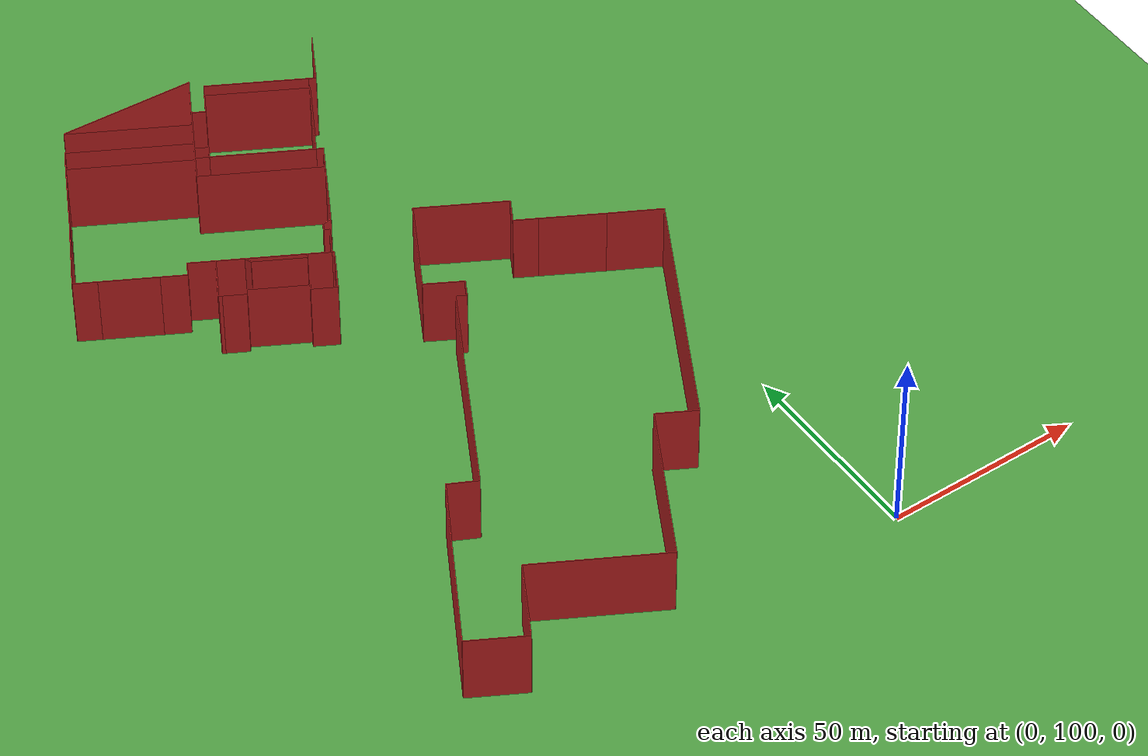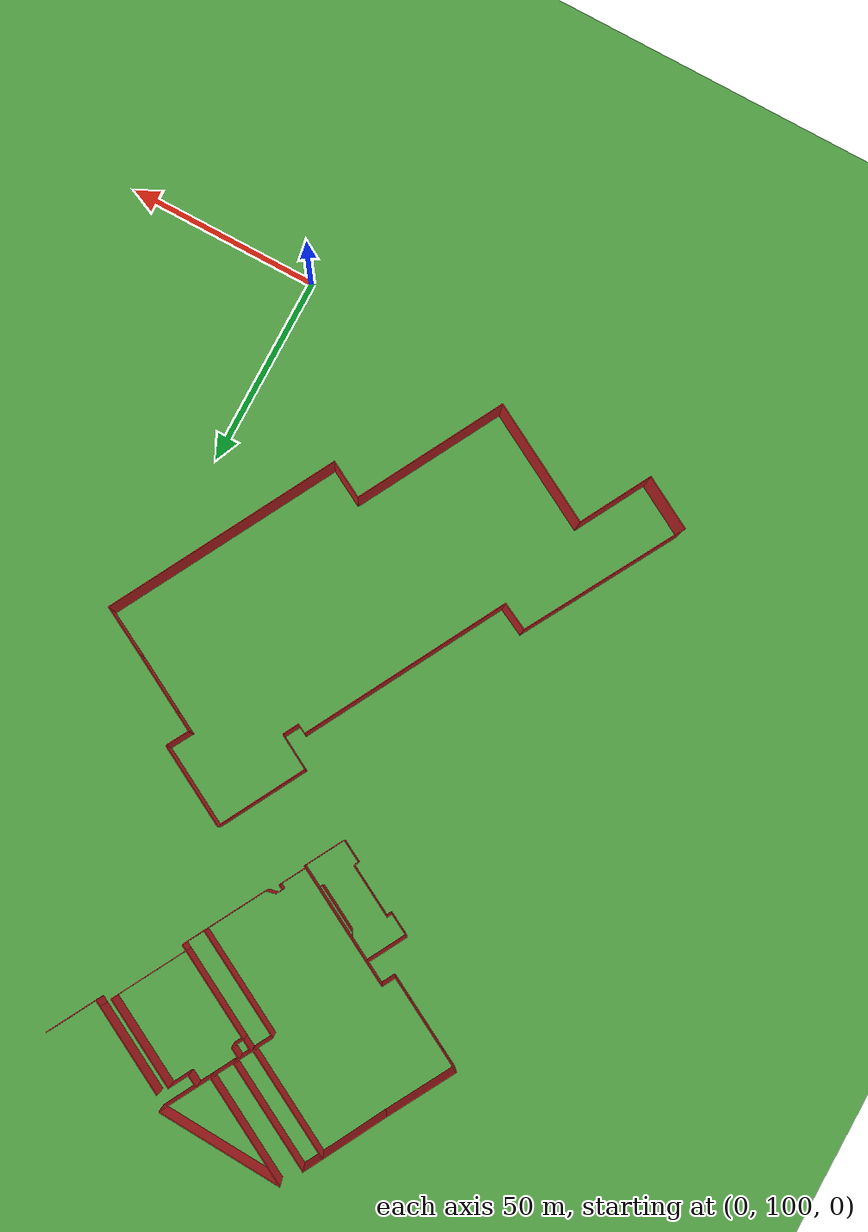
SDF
<sdf version="1.4">
 <world name="default">
  <model name="ground">
   <static>true</static>
   <link name="link">
    <collision name="collision">
     <geometry><plane><size>10000 10000</size><normal>0 0 1</normal></plane></geometry>
     <surface><friction><ode><mu>100</mu><mu2>50</mu2></ode></friction></surface>
    </collision>
    <visual name="visual">
     <pose>0 0 -1 0 0 0</pose>
     <geometry><plane><normal>0 0 1</normal><size>10000 10000</size></plane></geometry>
     <material>
      <script><uri>file://media/materials/scripts/gazebo.material</uri><name>Gazebo/Grass</name></script>
     </material>
    </visual>
   </link>
  </model>
  <include><uri>model://sun</uri></include>
  <model name="office_building_266170570">
   <static>true</static>
   <pose>-81.7936501681 229.378567488 0.0 0 0 0</pose>
   <link name="office_building_266170570_0">
    <collision name="office_building_266170570_0">
     <geometry><box><size>1.39700310273 0.2 20.0</size></box></geometry>
    </collision>
    <visual name="office_building_266170570_0">
     <geometry><box><size>1.39700310273 0.2 20.0</size></box></geometry>
     <material>
      <script><uri>file://media/materials/scripts/gazebo.material</uri><name>Gazebo/Red</name></script>
     </material>
    </visual>
    <pose>3.63251054344 -7.369670324 9.0 0 0 -2.0777974315</pose>
   </link>
   <link name="office_building_266170570_1">
    <collision name="office_building_266170570_1">
     <geometry><box><size>14.6986015448 0.2 20.0</size></box></geometry>
    </collision>
    <visual name="office_building_266170570_1">
     <geometry><box><size>14.6986015448 0.2 20.0</size></box></geometry>
     <material>
      <script><uri>file://media/materials/scripts/gazebo.material</uri><name>Gazebo/Red</name></script>
     </material>
    </visual>
    <pose>-2.4608443352 -3.20447137608 9.0 0 0 -0.504831986802</pose>
   </link>
   <link name="office_building_266170570_2">
    <collision name="office_building_266170570_2">
     <geometry><box><size>1.39700496269 0.2 20.0</size></box></geometry>
    </collision>
    <visual name="office_building_266170570_2">
     <geometry><box><size>1.39700496269 0.2 20.0</size></box></geometry>
     <material>
      <script><uri>file://media/materials/scripts/gazebo.material</uri><name>Gazebo/Red</name></script>
     </material>
    </visual>
    <pose>-9.23252553549 -0.260539667054 9.0 0 0 1.06379499911</pose>
   </link>
   <link name="office_building_266170570_3">
    <collision name="office_building_266170570_3">
     <geometry><box><size>5.76691093643 0.2 20.0</size></box></geometry>
    </collision>
    <visual name="office_building_266170570_3">
     <geometry><box><size>5.76691093643 0.2 20.0</size></box></geometry>
     <material>
      <script><uri>file://media/materials/scripts/gazebo.material</uri><name>Gazebo/Red</name></script>
     </material>
    </visual>
    <pose>-12.0957704683 0.522859389206 9.0 0 0 -0.504602122453</pose>
   </link>
   <link name="office_building_266170570_4">
    <collision name="office_building_266170570_4">
     <geometry><box><size>0.833846281988 0.2 20.0</size></box></geometry>
    </collision>
    <visual name="office_building_266170570_4">
     <geometry><box><size>0.833846281988 0.2 20.0</size></box></geometry>
     <material>
      <script><uri>file://media/materials/scripts/gazebo.material</uri><name>Gazebo/Red</name></script>
     </material>
    </visual>
    <pose>-14.9867890051 2.11483712402 9.0 0 0 -0.494708380203</pose>
   </link>
   <link name="office_building_266170570_5">
    <collision name="office_building_266170570_5">
     <geometry><box><size>11.4798929071 0.2 20.0</size></box></geometry>
    </collision>
    <visual name="office_building_266170570_5">
     <geometry><box><size>11.4798929071 0.2 20.0</size></box></geometry>
     <material>
      <script><uri>file://media/materials/scripts/gazebo.material</uri><name>Gazebo/Red</name></script>
     </material>
    </visual>
    <pose>-12.5625727852 7.32840228102 9.0 0 0 -2.07861022507</pose>
   </link>
   <link name="office_building_266170570_6">
    <collision name="office_building_266170570_6">
     <geometry><box><size>6.80532004535 0.2 20.0</size></box></geometry>
    </collision>
    <visual name="office_building_266170570_6">
     <geometry><box><size>6.80532004535 0.2 20.0</size></box></geometry>
     <material>
      <script><uri>file://media/materials/scripts/gazebo.material</uri><name>Gazebo/Red</name></script>
     </material>
    </visual>
    <pose>-6.79144881949 10.7015033614 9.0 0 0 2.63783901698</pose>
   </link>
   <link name="office_building_266170570_7">
    <collision name="office_building_266170570_7">
     <geometry><box><size>1.78837437508 0.2 20.0</size></box></geometry>
    </collision>
    <visual name="office_building_266170570_7">
     <geometry><box><size>1.78837437508 0.2 20.0</size></box></geometry>
     <material>
      <script><uri>file://media/materials/scripts/gazebo.material</uri><name>Gazebo/Red</name></script>
     </material>
    </visual>
    <pose>-3.47792002104 8.22933964613 9.0 0 0 1.95306828924</pose>
   </link>
   <link name="office_building_266170570_8">
    <collision name="office_building_266170570_8">
     <geometry><box><size>13.1072693143 0.2 20.0</size></box></geometry>
    </collision>
    <visual name="office_building_266170570_8">
     <geometry><box><size>13.1072693143 0.2 20.0</size></box></geometry>
     <material>
      <script><uri>file://media/materials/scripts/gazebo.material</uri><name>Gazebo/Red</name></script>
     </material>
    </visual>
    <pose>2.59319621351 4.23259032946 9.0 0 0 2.63721885062</pose>
   </link>
   <link name="office_building_266170570_9">
    <collision name="office_building_266170570_9">
     <geometry><box><size>1.12604697688 0.2 20.0</size></box></geometry>
    </collision>
    <visual name="office_building_266170570_9">
     <geometry><box><size>1.12604697688 0.2 20.0</size></box></geometry>
     <material>
      <script><uri>file://media/materials/scripts/gazebo.material</uri><name>Gazebo/Red</name></script>
     </material>
    </visual>
    <pose>8.60319730164 1.55820258264 9.0 0 0 -2.07589376781</pose>
   </link>
   <link name="office_building_266170570_10">
    <collision name="office_building_266170570_10">
     <geometry><box><size>5.85540222931 0.2 20.0</size></box></geometry>
    </collision>
    <visual name="office_building_266170570_10">
     <geometry><box><size>5.85540222931 0.2 20.0</size></box></geometry>
     <material>
      <script><uri>file://media/materials/scripts/gazebo.material</uri><name>Gazebo/Red</name></script>
     </material>
    </visual>
    <pose>11.4386392922 0.635833320226 9.0 0 0 2.63712221976</pose>
   </link>
   <link name="office_building_266170570_11">
    <collision name="office_building_266170570_11">
     <geometry><box><size>0.558584636573 0.2 20.0</size></box></geometry>
    </collision>
    <visual name="office_building_266170570_11">
     <geometry><box><size>0.558584636573 0.2 20.0</size></box></geometry>
     <material>
      <script><uri>file://media/materials/scripts/gazebo.material</uri><name>Gazebo/Red</name></script>
     </material>
    </visual>
    <pose>14.2462629911 -0.91402323997 9.0 0 0 2.63803889244</pose>
   </link>
   <link name="office_building_266170570_12">
    <collision name="office_building_266170570_12">
     <geometry><box><size>11.4798641348 0.2 20.0</size></box></geometry>
    </collision>
    <visual name="office_building_266170570_12">
     <geometry><box><size>11.4798641348 0.2 20.0</size></box></geometry>
     <material>
      <script><uri>file://media/materials/scripts/gazebo.material</uri><name>Gazebo/Red</name></script>
     </material>
    </visual>
    <pose>11.6997434728 -6.06440235666 9.0 0 0 1.06298284551</pose>
   </link>
   <link name="office_building_266170570_13">
    <collision name="office_building_266170570_13">
     <geometry><box><size>6.41398778348 0.2 20.0</size></box></geometry>
    </collision>
    <visual name="office_building_266170570_13">
     <geometry><box><size>6.41398778348 0.2 20.0</size></box></geometry>
     <material>
      <script><uri>file://media/materials/scripts/gazebo.material</uri><name>Gazebo/Red</name></script>
     </material>
    </visual>
    <pose>6.1009734788 -9.53015749556 9.0 0 0 -0.504389564677</pose>
   </link>
  </model>
  <model name="Dervish">
   <static>true</static>
   <pose>-66.2884371687 264.681931728 0.0 0 0 0</pose>
   <link name="Dervish_0">
    <collision name="Dervish_0"><geometry><box><size>5.67785405827 0.2 20.0</size></box></geometry></collision>
    <visual name="Dervish_0">
     <geometry><box><size>5.67785405827 0.2 20.0</size></box></geometry>
     <material>
      <script><uri>file://media/materials/scripts/gazebo.material</uri><name>Gazebo/Red</name></script>
     </material>
    </visual>
    <pose>-12.4715369249 5.87945724169 9.0 0 0 -2.07573767451</pose>
   </link>
   <link name="Dervish_1">
    <collision name="Dervish_1"><geometry><box><size>0.541932113997 0.2 20.0</size></box></geometry></collision>
    <visual name="Dervish_1">
     <geometry><box><size>0.541932113997 0.2 20.0</size></box></geometry>
     <material>
      <script><uri>file://media/materials/scripts/gazebo.material</uri><name>Gazebo/Red</name></script>
     </material>
    </visual>
    <pose>-10.9647460019 8.59992401091 9.0 0 0 -2.08572171621</pose>
   </link>
   <link name="Dervish_2">
    <collision name="Dervish_2"><geometry><box><size>3.42054090774 0.2 20.0</size></box></geometry></collision>
    <visual name="Dervish_2">
     <geometry><box><size>3.42054090774 0.2 20.0</size></box></geometry>
     <material>
      <script><uri>file://media/materials/scripts/gazebo.material</uri><name>Gazebo/Red</name></script>
     </material>
    </visual>
    <pose>-9.33576221419 8.00606605872 9.0 0 0 2.63509139647</pose>
   </link>
   <link name="Dervish_3">
    <collision name="Dervish_3"><geometry><box><size>25.3847935368 0.2 20.0</size></box></geometry></collision>
    <visual name="Dervish_3">
     <geometry><box><size>25.3847935368 0.2 20.0</size></box></geometry>
     <material>
      <script><uri>file://media/materials/scripts/gazebo.material</uri><name>Gazebo/Red</name></script>
     </material>
    </visual>
    <pose>3.26793138139 1.03586656572 9.0 0 0 2.63660743519</pose>
   </link>
   <link name="Dervish_4">
    <collision name="Dervish_4"><geometry><box><size>1.71717407061 0.2 20.0</size></box></geometry></collision>
    <visual name="Dervish_4">
     <geometry><box><size>1.71717407061 0.2 20.0</size></box></geometry>
     <material>
      <script><uri>file://media/materials/scripts/gazebo.material</uri><name>Gazebo/Red</name></script>
     </material>
    </visual>
    <pose>15.1266349575 -5.52159209482 9.0 0 0 2.63452061059</pose>
   </link>
   <link name="Dervish_5">
    <collision name="Dervish_5"><geometry><box><size>3.2097948226 0.2 20.0</size></box></geometry></collision>
    <visual name="Dervish_5">
     <geometry><box><size>3.2097948226 0.2 20.0</size></box></geometry>
     <material>
      <script><uri>file://media/materials/scripts/gazebo.material</uri><name>Gazebo/Red</name></script>
     </material>
    </visual>
    <pose>15.1043323852 -7.34509249293 9.0 0 0 1.06836298953</pose>
   </link>
   <link name="Dervish_6">
    <collision name="Dervish_6"><geometry><box><size>2.99721694135 0.2 20.0</size></box></geometry></collision>
    <visual name="Dervish_6">
     <geometry><box><size>2.99721694135 0.2 20.0</size></box></geometry>
     <material>
      <script><uri>file://media/materials/scripts/gazebo.material</uri><name>Gazebo/Red</name></script>
     </material>
    </visual>
    <pose>13.60310679 -10.061341314 9.0 0 0 1.06325252569</pose>
   </link>
   <link name="Dervish_7">
    <collision name="Dervish_7"><geometry><box><size>30.5281612119 0.2 20.0</size></box></geometry></collision>
    <visual name="Dervish_7">
     <geometry><box><size>30.5281612119 0.2 20.0</size></box></geometry>
     <material>
      <script><uri>file://media/materials/scripts/gazebo.material</uri><name>Gazebo/Red</name></script>
     </material>
    </visual>
    <pose>-0.485075156233 -3.98810819208 9.0 0 0 -0.504854231724</pose>
   </link>
  </model>
  <model name="restaurant_0">
   <static>true</static>
   <pose>-66.2884371687 264.681931728 0.0 0 0 0</pose>
   <link name="restaurant_0_0">
    <collision name="restaurant_0_0">
     <geometry><box><size>5.67785405827 0.2 20.0</size></box></geometry>
    </collision>
    <visual name="restaurant_0_0">
     <geometry><box><size>5.67785405827 0.2 20.0</size></box></geometry>
     <material>
      <script><uri>file://media/materials/scripts/gazebo.material</uri><name>Gazebo/Blue</name></script>
     </material>
    </visual>
    <pose>-12.4715369249 5.87945724169 9.0 0 0 -2.07573767451</pose>
   </link>
   <link name="restaurant_0_1">
    <collision name="restaurant_0_1">
     <geometry><box><size>0.541932113997 0.2 20.0</size></box></geometry>
    </collision>
    <visual name="restaurant_0_1">
     <geometry><box><size>0.541932113997 0.2 20.0</size></box></geometry>
     <material>
      <script><uri>file://media/materials/scripts/gazebo.material</uri><name>Gazebo/Blue</name></script>
     </material>
    </visual>
    <pose>-10.9647460019 8.59992401091 9.0 0 0 -2.08572171621</pose>
   </link>
   <link name="restaurant_0_2">
    <collision name="restaurant_0_2">
     <geometry><box><size>3.42054090774 0.2 20.0</size></box></geometry>
    </collision>
    <visual name="restaurant_0_2">
     <geometry><box><size>3.42054090774 0.2 20.0</size></box></geometry>
     <material>
      <script><uri>file://media/materials/scripts/gazebo.material</uri><name>Gazebo/Blue</name></script>
     </material>
    </visual>
    <pose>-9.33576221419 8.00606605872 9.0 0 0 2.63509139647</pose>
   </link>
   <link name="restaurant_0_3">
    <collision name="restaurant_0_3">
     <geometry><box><size>25.3847935368 0.2 20.0</size></box></geometry>
    </collision>
    <visual name="restaurant_0_3">
     <geometry><box><size>25.3847935368 0.2 20.0</size></box></geometry>
     <material>
      <script><uri>file://media/materials/scripts/gazebo.material</uri><name>Gazebo/Blue</name></script>
     </material>
    </visual>
    <pose>3.26793138139 1.03586656572 9.0 0 0 2.63660743519</pose>
   </link>
   <link name="restaurant_0_4">
    <collision name="restaurant_0_4">
     <geometry><box><size>1.71717407061 0.2 20.0</size></box></geometry>
    </collision>
    <visual name="restaurant_0_4">
     <geometry><box><size>1.71717407061 0.2 20.0</size></box></geometry>
     <material>
      <script><uri>file://media/materials/scripts/gazebo.material</uri><name>Gazebo/Blue</name></script>
     </material>
    </visual>
    <pose>15.1266349575 -5.52159209482 9.0 0 0 2.63452061059</pose>
   </link>
   <link name="restaurant_0_5">
    <collision name="restaurant_0_5">
     <geometry><box><size>3.2097948226 0.2 20.0</size></box></geometry>
    </collision>
    <visual name="restaurant_0_5">
     <geometry><box><size>3.2097948226 0.2 20.0</size></box></geometry>
     <material>
      <script><uri>file://media/materials/scripts/gazebo.material</uri><name>Gazebo/Blue</name></script>
     </material>
    </visual>
    <pose>15.1043323852 -7.34509249293 9.0 0 0 1.06836298953</pose>
   </link>
   <link name="restaurant_0_6">
    <collision name="restaurant_0_6">
     <geometry><box><size>2.99721694135 0.2 20.0</size></box></geometry>
    </collision>
    <visual name="restaurant_0_6">
     <geometry><box><size>2.99721694135 0.2 20.0</size></box></geometry>
     <material>
      <script><uri>file://media/materials/scripts/gazebo.material</uri><name>Gazebo/Blue</name></script>
     </material>
    </visual>
    <pose>13.60310679 -10.061341314 9.0 0 0 1.06325252569</pose>
   </link>
   <link name="restaurant_0_7">
    <collision name="restaurant_0_7">
     <geometry><box><size>30.5281612119 0.2 20.0</size></box></geometry>
    </collision>
    <visual name="restaurant_0_7">
     <geometry><box><size>30.5281612119 0.2 20.0</size></box></geometry>
     <material>
      <script><uri>file://media/materials/scripts/gazebo.material</uri><name>Gazebo/Blue</name></script>
     </material>
    </visual>
    <pose>-0.485075156233 -3.98810819208 9.0 0 0 -0.504854231724</pose>
   </link>
  </model>
  <model name="office_building_266170603">
   <static>true</static>
   <pose>-75.0597866514 289.817154833 0.0 0 0 0</pose>
   <link name="office_building_266170603_0">
    <collision name="office_building_266170603_0">
     <geometry><box><size>30.6402129822 0.2 20.0</size></box></geometry>
    </collision>
    <visual name="office_building_266170603_0">
     <geometry><box><size>30.6402129822 0.2 20.0</size></box></geometry>
     <material>
      <script><uri>file://media/materials/scripts/gazebo.material</uri><name>Gazebo/Red</name></script>
     </material>
    </visual>
    <pose>-9.87628696857 1.15682898354 9.0 0 0 -0.50472329848</pose>
   </link>
   <link name="office_building_266170603_1">
    <collision name="office_building_266170603_1">
     <geometry><box><size>34.0271769497 0.2 20.0</size></box></geometry>
    </collision>
    <visual name="office_building_266170603_1">
     <geometry><box><size>34.0271769497 0.2 20.0</size></box></geometry>
     <material>
      <script><uri>file://media/materials/scripts/gazebo.material</uri><name>Gazebo/Red</name></script>
     </material>
    </visual>
    <pose>-6.30111811998 7.57896428873 9.0 0 0 3.08359848207</pose>
   </link>
   <link name="office_building_266170603_2">
    <collision name="office_building_266170603_2">
     <geometry><box><size>10.584524215 0.2 20.0</size></box></geometry>
    </collision>
    <visual name="office_building_266170603_2">
     <geometry><box><size>10.584524215 0.2 20.0</size></box></geometry>
     <material>
      <script><uri>file://media/materials/scripts/gazebo.material</uri><name>Gazebo/Red</name></script>
     </material>
    </visual>
    <pose>8.10952218297 1.96889216168 9.0 0 0 1.06279072848</pose>
   </link>
   <link name="office_building_266170603_3">
    <collision name="office_building_266170603_3">
     <geometry><box><size>4.115904944 0.2 20.0</size></box></geometry>
    </collision>
    <visual name="office_building_266170603_3">
     <geometry><box><size>4.115904944 0.2 20.0</size></box></geometry>
     <material>
      <script><uri>file://media/materials/scripts/gazebo.material</uri><name>Gazebo/Red</name></script>
     </material>
    </visual>
    <pose>4.53435333439 -4.45324314351 9.0 0 0 1.06292294041</pose>
   </link>
  </model>
  <model name="office_building_266170601">
   <static>true</static>
   <pose>-66.8825615801 277.941499722 0.0 0 0 0</pose>
   <link name="office_building_266170601_0">
    <collision name="office_building_266170601_0">
     <geometry><box><size>3.38353530132 0.2 20.0</size></box></geometry>
    </collision>
    <visual name="office_building_266170601_0">
     <geometry><box><size>3.38353530132 0.2 20.0</size></box></geometry>
     <material>
      <script><uri>file://media/materials/scripts/gazebo.material</uri><name>Gazebo/Red</name></script>
     </material>
    </visual>
    <pose>-6.42319952826 -4.6050427798 9.0 0 0 -2.07877552723</pose>
   </link>
   <link name="office_building_266170601_1">
    <collision name="office_building_266170601_1">
     <geometry><box><size>3.4164629303 0.2 20.0</size></box></geometry>
    </collision>
    <visual name="office_building_266170601_1">
     <geometry><box><size>3.4164629303 0.2 20.0</size></box></geometry>
     <material>
      <script><uri>file://media/materials/scripts/gazebo.material</uri><name>Gazebo/Red</name></script>
     </material>
    </visual>
    <pose>-7.09584339224 -2.30141914977 9.0 0 0 -0.504345727199</pose>
   </link>
   <link name="office_building_266170601_2">
    <collision name="office_building_266170601_2">
     <geometry><box><size>1.63508040049 0.2 20.0</size></box></geometry>
    </collision>
    <visual name="office_building_266170601_2">
     <geometry><box><size>1.63508040049 0.2 20.0</size></box></geometry>
     <material>
      <script><uri>file://media/materials/scripts/gazebo.material</uri><name>Gazebo/Red</name></script>
     </material>
    </visual>
    <pose>-8.19661553744 -0.760030684401 9.0 0 0 -2.07472996669</pose>
   </link>
   <link name="office_building_266170601_3">
    <collision name="office_building_266170601_3">
     <geometry><box><size>6.48875215992 0.2 20.0</size></box></geometry>
    </collision>
    <visual name="office_building_266170601_3">
     <geometry><box><size>6.48875215992 0.2 20.0</size></box></geometry>
     <material>
      <script><uri>file://media/materials/scripts/gazebo.material</uri><name>Gazebo/Red</name></script>
     </material>
    </visual>
    <pose>-6.22277110051 2.79004691181 9.0 0 0 -2.07911780512</pose>
   </link>
   <link name="office_building_266170601_4">
    <collision name="office_building_266170601_4">
     <geometry><box><size>4.115904944 0.2 20.0</size></box></geometry>
    </collision>
    <visual name="office_building_266170601_4">
     <geometry><box><size>4.115904944 0.2 20.0</size></box></geometry>
     <material>
      <script><uri>file://media/materials/scripts/gazebo.material</uri><name>Gazebo/Red</name></script>
     </material>
    </visual>
    <pose>-3.64287173696 7.42241196718 9.0 0 0 -2.07866971318</pose>
   </link>
   <link name="office_building_266170601_5">
    <collision name="office_building_266170601_5">
     <geometry><box><size>3.42054008001 0.2 20.0</size></box></geometry>
    </collision>
    <visual name="office_building_266170601_5">
     <geometry><box><size>3.42054008001 0.2 20.0</size></box></geometry>
     <material>
      <script><uri>file://media/materials/scripts/gazebo.material</uri><name>Gazebo/Red</name></script>
     </material>
    </visual>
    <pose>-1.14650834931 8.39092150863 9.0 0 0 2.63508998575</pose>
   </link>
   <link name="office_building_266170601_6">
    <collision name="office_building_266170601_6">
     <geometry><box><size>5.68128068421 0.2 20.0</size></box></geometry>
    </collision>
    <visual name="office_building_266170601_6">
     <geometry><box><size>5.68128068421 0.2 20.0</size></box></geometry>
     <material>
      <script><uri>file://media/materials/scripts/gazebo.material</uri><name>Gazebo/Red</name></script>
     </material>
    </visual>
    <pose>1.7335047523 10.0416493568 9.0 0 0 -2.07988394772</pose>
   </link>
   <link name="office_building_266170601_7">
    <collision name="office_building_266170601_7">
     <geometry><box><size>25.380711725 0.2 20.0</size></box></geometry>
    </collision>
    <visual name="office_building_266170601_7">
     <geometry><box><size>25.380711725 0.2 20.0</size></box></geometry>
     <material>
      <script><uri>file://media/materials/scripts/gazebo.material</uri><name>Gazebo/Red</name></script>
     </material>
    </visual>
    <pose>14.2261153724 6.38574697422 9.0 0 0 2.63689594772</pose>
   </link>
   <link name="office_building_266170601_8">
    <collision name="office_building_266170601_8">
     <geometry><box><size>21.3044836007 0.2 20.0</size></box></geometry>
    </collision>
    <visual name="office_building_266170601_8">
     <geometry><box><size>21.3044836007 0.2 20.0</size></box></geometry>
     <material>
      <script><uri>file://media/materials/scripts/gazebo.material</uri><name>Gazebo/Red</name></script>
     </material>
    </visual>
    <pose>20.1522303734 -9.05739304362 9.0 0 0 1.06274863921</pose>
   </link>
   <link name="office_building_266170601_9">
    <collision name="office_building_266170601_9">
     <geometry><box><size>25.3847935368 0.2 20.0</size></box></geometry>
    </collision>
    <visual name="office_building_266170601_9">
     <geometry><box><size>25.3847935368 0.2 20.0</size></box></geometry>
     <material>
      <script><uri>file://media/materials/scripts/gazebo.material</uri><name>Gazebo/Red</name></script>
     </material>
    </visual>
    <pose>3.86205579273 -12.2237014288 9.0 0 0 -0.504985218403</pose>
   </link>
  </model>
  <model name="office_building_266170608">
   <static>true</static>
   <pose>-64.3759193831 296.409983153 0.0 0 0 0</pose>
  </model>
  <model name="Church of Saint Mary the Virgin">
   <static>true</static>
   <pose>-86.3866537574 248.573622145 0.0 0 0 0</pose>
   <link name="Church of Saint Mary the Virgin_0">
    <collision name="Church of Saint Mary the Virgin_0">
     <geometry><box><size>3.84495734093 0.2 20.0</size></box></geometry>
    </collision>
    <visual name="Church of Saint Mary the Virgin_0">
     <geometry><box><size>3.84495734093 0.2 20.0</size></box></geometry>
     <material>
      <script><uri>file://media/materials/scripts/gazebo.material</uri><name>Gazebo/Red</name></script>
     </material>
    </visual>
    <pose>-11.950136052 -5.30524685635 9.0 0 0 1.06342734958</pose>
   </link>
   <link name="Church of Saint Mary the Virgin_1">
    <collision name="Church of Saint Mary the Virgin_1">
     <geometry><box><size>6.45133857822 0.2 20.0</size></box></geometry>
    </collision>
    <visual name="Church of Saint Mary the Virgin_1">
     <geometry><box><size>6.45133857822 0.2 20.0</size></box></geometry>
     <material>
      <script><uri>file://media/materials/scripts/gazebo.material</uri><name>Gazebo/Red</name></script>
     </material>
    </visual>
    <pose>-15.7085286166 -5.42725143927 9.0 0 0 -0.504181469871</pose>
   </link>
   <link name="Church of Saint Mary the Virgin_2">
    <collision name="Church of Saint Mary the Virgin_2">
     <geometry><box><size>14.4664003027 0.2 20.0</size></box></geometry>
    </collision>
    <visual name="Church of Saint Mary the Virgin_2">
     <geometry><box><size>14.4664003027 0.2 20.0</size></box></geometry>
     <material>
      <script><uri>file://media/materials/scripts/gazebo.material</uri><name>Gazebo/Red</name></script>
     </material>
    </visual>
    <pose>-24.8652621963 -0.3733243449 9.0 0 0 -0.50439341657</pose>
   </link>
   <link name="Church of Saint Mary the Virgin_3">
    <collision name="Church of Saint Mary the Virgin_3">
     <geometry><box><size>5.8927568142 0.2 20.0</size></box></geometry>
    </collision>
    <visual name="Church of Saint Mary the Virgin_3">
     <geometry><box><size>5.8927568142 0.2 20.0</size></box></geometry>
     <material>
      <script><uri>file://media/materials/scripts/gazebo.material</uri><name>Gazebo/Red</name></script>
     </material>
    </visual>
    <pose>-33.7773694497 4.54583853588 9.0 0 0 -0.504242978938</pose>
   </link>
   <link name="Church of Saint Mary the Virgin_4">
    <collision name="Church of Saint Mary the Virgin_4">
     <geometry><box><size>19.8171917624 0.2 20.0</size></box></geometry>
    </collision>
    <visual name="Church of Saint Mary the Virgin_4">
     <geometry><box><size>19.8171917624 0.2 20.0</size></box></geometry>
     <material>
      <script><uri>file://media/materials/scripts/gazebo.material</uri><name>Gazebo/Red</name></script>
     </material>
    </visual>
    <pose>-31.4641594697 14.5856274204 9.0 0 0 -2.08725282521</pose>
   </link>
   <link name="Church of Saint Mary the Virgin_5">
    <collision name="Church of Saint Mary the Virgin_5">
     <geometry><box><size>18.3060922156 0.2 20.0</size></box></geometry>
    </collision>
    <visual name="Church of Saint Mary the Virgin_5">
     <geometry><box><size>18.3060922156 0.2 20.0</size></box></geometry>
     <material>
      <script><uri>file://media/materials/scripts/gazebo.material</uri><name>Gazebo/Red</name></script>
     </material>
    </visual>
    <pose>-22.1954512376 31.2411931211 9.0 0 0 -2.06925582551</pose>
   </link>
   <link name="Church of Saint Mary the Virgin_6">
    <collision name="Church of Saint Mary the Virgin_6">
     <geometry><box><size>30.6361469192 0.2 20.0</size></box></geometry>
    </collision>
    <visual name="Church of Saint Mary the Virgin_6">
     <geometry><box><size>30.6361469192 0.2 20.0</size></box></geometry>
     <material>
      <script><uri>file://media/materials/scripts/gazebo.material</uri><name>Gazebo/Red</name></script>
     </material>
    </visual>
    <pose>-4.40979929149 31.8764505617 9.0 0 0 2.63711109387</pose>
   </link>
   <link name="Church of Saint Mary the Virgin_7">
    <collision name="Church of Saint Mary the Virgin_7">
     <geometry><box><size>5.67785405827 0.2 20.0</size></box></geometry>
    </collision>
    <visual name="Church of Saint Mary the Virgin_7">
     <geometry><box><size>5.67785405827 0.2 20.0</size></box></geometry>
     <material>
      <script><uri>file://media/materials/scripts/gazebo.material</uri><name>Gazebo/Red</name></script>
     </material>
    </visual>
    <pose>7.62667966381 21.9877668248 9.0 0 0 1.06585497908</pose>
   </link>
   <link name="Church of Saint Mary the Virgin_8">
    <collision name="Church of Saint Mary the Virgin_8">
     <geometry><box><size>30.5281612119 0.2 20.0</size></box></geometry>
    </collision>
    <visual name="Church of Saint Mary the Virgin_8">
     <geometry><box><size>30.5281612119 0.2 20.0</size></box></geometry>
     <material>
      <script><uri>file://media/materials/scripts/gazebo.material</uri><name>Gazebo/Red</name></script>
     </material>
    </visual>
    <pose>19.6131414324 12.120201391 9.0 0 0 2.63673842187</pose>
   </link>
   <link name="Church of Saint Mary the Virgin_9">
    <collision name="Church of Saint Mary the Virgin_9">
     <geometry><box><size>17.6318500295 0.2 20.0</size></box></geometry>
    </collision>
    <visual name="Church of Saint Mary the Virgin_9">
     <geometry><box><size>17.6318500295 0.2 20.0</size></box></geometry>
     <material>
      <script><uri>file://media/materials/scripts/gazebo.material</uri><name>Gazebo/Red</name></script>
     </material>
    </visual>
    <pose>28.6916907435 -2.96930474469 9.0 0 0 1.06371481001</pose>
   </link>
   <link name="Church of Saint Mary the Virgin_10">
    <collision name="Church of Saint Mary the Virgin_10">
     <geometry><box><size>2.61720081765 0.2 20.0</size></box></geometry>
    </collision>
    <visual name="Church of Saint Mary the Virgin_10">
     <geometry><box><size>2.61720081765 0.2 20.0</size></box></geometry>
     <material>
      <script><uri>file://media/materials/scripts/gazebo.material</uri><name>Gazebo/Red</name></script>
     </material>
    </visual>
    <pose>23.1316794028 -10.9537888504 9.0 0 0 0.213998794163</pose>
   </link>
   <link name="Church of Saint Mary the Virgin_11">
    <collision name="Church of Saint Mary the Virgin_11">
     <geometry><box><size>1.73569979775 0.2 20.0</size></box></geometry>
    </collision>
    <visual name="Church of Saint Mary the Virgin_11">
     <geometry><box><size>1.73569979775 0.2 20.0</size></box></geometry>
     <material>
      <script><uri>file://media/materials/scripts/gazebo.material</uri><name>Gazebo/Red</name></script>
     </material>
    </visual>
    <pose>21.4303638274 -11.9897204802 9.0 0 0 1.06224751267</pose>
   </link>
   <link name="Church of Saint Mary the Virgin_12">
    <collision name="Church of Saint Mary the Virgin_12">
     <geometry><box><size>1.39646146929 0.2 20.0</size></box></geometry>
    </collision>
    <visual name="Church of Saint Mary the Virgin_12">
     <geometry><box><size>1.39646146929 0.2 20.0</size></box></geometry>
     <material>
      <script><uri>file://media/materials/scripts/gazebo.material</uri><name>Gazebo/Red</name></script>
     </material>
    </visual>
    <pose>21.6193602063 -13.0846713284 9.0 0 0 2.6380381007</pose>
   </link>
   <link name="Church of Saint Mary the Virgin_13">
    <collision name="Church of Saint Mary the Virgin_13">
     <geometry><box><size>7.49403430092 0.2 20.0</size></box></geometry>
    </collision>
    <visual name="Church of Saint Mary the Virgin_13">
     <geometry><box><size>7.49403430092 0.2 20.0</size></box></geometry>
     <material>
      <script><uri>file://media/materials/scripts/gazebo.material</uri><name>Gazebo/Red</name></script>
     </material>
    </visual>
    <pose>20.4127817382 -16.6979523825 9.0 0 0 1.06417785899</pose>
   </link>
   <link name="Church of Saint Mary the Virgin_14">
    <collision name="Church of Saint Mary the Virgin_14">
     <geometry><box><size>5.85540222931 0.2 20.0</size></box></geometry>
    </collision>
    <visual name="Church of Saint Mary the Virgin_14">
     <geometry><box><size>5.85540222931 0.2 20.0</size></box></geometry>
     <material>
      <script><uri>file://media/materials/scripts/gazebo.material</uri><name>Gazebo/Red</name></script>
     </material>
    </visual>
    <pose>16.0316428815 -18.5592213362 9.0 0 0 -0.504470433829</pose>
   </link>
   <link name="Church of Saint Mary the Virgin_15">
    <collision name="Church of Saint Mary the Virgin_15">
     <geometry><box><size>14.4939965649 0.2 20.0</size></box></geometry>
    </collision>
    <visual name="Church of Saint Mary the Virgin_15">
     <geometry><box><size>14.4939965649 0.2 20.0</size></box></geometry>
     <material>
      <script><uri>file://media/materials/scripts/gazebo.material</uri><name>Gazebo/Red</name></script>
     </material>
    </visual>
    <pose>7.1250846564 -13.6401027571 9.0 0 0 -0.504665832881</pose>
   </link>
   <link name="Church of Saint Mary the Virgin_16">
    <collision name="Church of Saint Mary the Virgin_16">
     <geometry><box><size>6.80532004535 0.2 20.0</size></box></geometry>
    </collision>
    <visual name="Church of Saint Mary the Virgin_16">
     <geometry><box><size>6.80532004535 0.2 20.0</size></box></geometry>
     <material>
      <script><uri>file://media/materials/scripts/gazebo.material</uri><name>Gazebo/Red</name></script>
     </material>
    </visual>
    <pose>-2.19844523018 -8.49355129504 9.0 0 0 -0.503753636607</pose>
   </link>
   <link name="Church of Saint Mary the Virgin_17">
    <collision name="Church of Saint Mary the Virgin_17">
     <geometry><box><size>6.66974467677 0.2 20.0</size></box></geometry>
    </collision>
    <visual name="Church of Saint Mary the Virgin_17">
     <geometry><box><size>6.66974467677 0.2 20.0</size></box></geometry>
     <material>
      <script><uri>file://media/materials/scripts/gazebo.material</uri><name>Gazebo/Red</name></script>
     </material>
    </visual>
    <pose>-8.09722964202 -5.23799131621 9.0 0 0 -0.50486450933</pose>
   </link>
  </model>
  <model name="office_building_266170615">
   <static>true</static>
   <pose>-43.0796899 286.739955613 0.0 0 0 0</pose>
   <link name="office_building_266170615_0">
    <collision name="office_building_266170615_0">
     <geometry><box><size>14.2262024526 0.2 20.0</size></box></geometry>
    </collision>
    <visual name="office_building_266170615_0">
     <geometry><box><size>14.2262024526 0.2 20.0</size></box></geometry>
     <material>
      <script><uri>file://media/materials/scripts/gazebo.material</uri><name>Gazebo/Red</name></script>
     </material>
    </visual>
    <pose>8.05883731385 -0.387759561279 9.0 0 0 1.06305832089</pose>
   </link>
   <link name="office_building_266170615_1">
    <collision name="office_building_266170615_1">
     <geometry><box><size>1.80159611114 0.2 20.0</size></box></geometry>
    </collision>
    <visual name="office_building_266170615_1">
     <geometry><box><size>1.80159611114 0.2 20.0</size></box></geometry>
     <material>
      <script><uri>file://media/materials/scripts/gazebo.material</uri><name>Gazebo/Red</name></script>
     </material>
    </visual>
    <pose>3.81096677675 -6.16972327937 9.0 0 0 -0.502442414513</pose>
   </link>
   <link name="office_building_266170615_2">
    <collision name="office_building_266170615_2">
     <geometry><box><size>25.3198270375 0.2 20.0</size></box></geometry>
    </collision>
    <visual name="office_building_266170615_2">
     <geometry><box><size>25.3198270375 0.2 20.0</size></box></geometry>
     <material>
      <script><uri>file://media/materials/scripts/gazebo.material</uri><name>Gazebo/Red</name></script>
     </material>
    </visual>
    <pose>-8.05883731385 0.387759561279 9.0 0 0 -0.504885143759</pose>
   </link>
  </model>
  <model name="News Corp. Building">
   <static>true</static>
   <pose>-50.5013905066 174.567458803 0.0 0 0 0</pose>
   <link name="News Corp. Building_0">
    <collision name="News Corp. Building_0">
     <geometry><box><size>10.0096344861 0.2 20.0</size></box></geometry>
    </collision>
    <visual name="News Corp. Building_0">
     <geometry><box><size>10.0096344861 0.2 20.0</size></box></geometry>
     <material>
      <script><uri>file://media/materials/scripts/gazebo.material</uri><name>Gazebo/Red</name></script>
     </material>
    </visual>
    <pose>-1.65729710635 30.7680459874 9.0 0 0 -0.513734194874</pose>
   </link>
   <link name="News Corp. Building_1">
    <collision name="News Corp. Building_1">
     <geometry><box><size>25.1082838627 0.2 20.0</size></box></geometry>
    </collision>
    <visual name="News Corp. Building_1">
     <geometry><box><size>25.1082838627 0.2 20.0</size></box></geometry>
     <material>
      <script><uri>file://media/materials/scripts/gazebo.material</uri><name>Gazebo/Red</name></script>
     </material>
    </visual>
    <pose>0.0499386815706 44.2189386345 9.0 0 0 -2.07508847962</pose>
   </link>
   <link name="News Corp. Building_2">
    <collision name="News Corp. Building_2">
     <geometry><box><size>23.0710949908 0.2 20.0</size></box></geometry>
    </collision>
    <visual name="News Corp. Building_2">
     <geometry><box><size>23.0710949908 0.2 20.0</size></box></geometry>
     <material>
      <script><uri>file://media/materials/scripts/gazebo.material</uri><name>Gazebo/Red</name></script>
     </material>
    </visual>
    <pose>16.1955972476 49.6005303924 9.0 0 0 2.63373909597</pose>
   </link>
   <link name="News Corp. Building_3">
    <collision name="News Corp. Building_3">
     <geometry><box><size>6.50131090662 0.2 20.0</size></box></geometry>
    </collision>
    <visual name="News Corp. Building_3">
     <geometry><box><size>6.50131090662 0.2 20.0</size></box></geometry>
     <material>
      <script><uri>file://media/materials/scripts/gazebo.material</uri><name>Gazebo/Red</name></script>
     </material>
    </visual>
    <pose>24.6683980601 41.1650227763 9.0 0 0 1.05374917755</pose>
   </link>
   <link name="News Corp. Building_4">
    <collision name="News Corp. Building_4">
     <geometry><box><size>5.99503971772 0.2 20.0</size></box></geometry>
    </collision>
    <visual name="News Corp. Building_4">
     <geometry><box><size>5.99503971772 0.2 20.0</size></box></geometry>
     <material>
      <script><uri>file://media/materials/scripts/gazebo.material</uri><name>Gazebo/Red</name></script>
     </material>
    </visual>
    <pose>25.6857077205 36.8905209982 9.0 0 0 2.6371486806</pose>
   </link>
   <link name="News Corp. Building_5">
    <collision name="News Corp. Building_5">
     <geometry><box><size>16.1277163295 0.2 20.0</size></box></geometry>
    </collision>
    <visual name="News Corp. Building_5">
     <geometry><box><size>16.1277163295 0.2 20.0</size></box></geometry>
     <material>
      <script><uri>file://media/materials/scripts/gazebo.material</uri><name>Gazebo/Red</name></script>
     </material>
    </visual>
    <pose>35.3539557149 31.5166311933 9.0 0 0 2.63322111308</pose>
   </link>
   <link name="News Corp. Building_6">
    <collision name="News Corp. Building_6">
     <geometry><box><size>13.6431495412 0.2 20.0</size></box></geometry>
    </collision>
    <visual name="News Corp. Building_6">
     <geometry><box><size>13.6431495412 0.2 20.0</size></box></geometry>
     <material>
      <script><uri>file://media/materials/scripts/gazebo.material</uri><name>Gazebo/Red</name></script>
     </material>
    </visual>
    <pose>48.3858037495 24.3233821966 9.0 0 0 2.64197922225</pose>
   </link>
   <link name="News Corp. Building_7">
    <collision name="News Corp. Building_7">
     <geometry><box><size>65.0178501283 0.2 20.0</size></box></geometry>
    </collision>
    <visual name="News Corp. Building_7">
     <geometry><box><size>65.0178501283 0.2 20.0</size></box></geometry>
     <material>
      <script><uri>file://media/materials/scripts/gazebo.material</uri><name>Gazebo/Red</name></script>
     </material>
    </visual>
    <pose>38.6610758458 -7.40432535083 9.0 0 0 1.06634360845</pose>
   </link>
   <link name="News Corp. Building_8">
    <collision name="News Corp. Building_8">
     <geometry><box><size>10.453976872 0.2 20.0</size></box></geometry>
    </collision>
    <visual name="News Corp. Building_8">
     <geometry><box><size>10.453976872 0.2 20.0</size></box></geometry>
     <material>
      <script><uri>file://media/materials/scripts/gazebo.material</uri><name>Gazebo/Red</name></script>
     </material>
    </visual>
    <pose>18.3729661264 -33.3370380538 9.0 0 0 -0.504566395247</pose>
   </link>
   <link name="News Corp. Building_9">
    <collision name="News Corp. Building_9">
     <geometry><box><size>41.8379588579 0.2 20.0</size></box></geometry>
    </collision>
    <visual name="News Corp. Building_9">
     <geometry><box><size>41.8379588579 0.2 20.0</size></box></geometry>
     <material>
      <script><uri>file://media/materials/scripts/gazebo.material</uri><name>Gazebo/Red</name></script>
     </material>
    </visual>
    <pose>3.68941351983 -49.1250085041 9.0 0 0 1.06649689071</pose>
   </link>
   <link name="News Corp. Building_10">
    <collision name="News Corp. Building_10">
     <geometry><box><size>34.3002042019 0.2 20.0</size></box></geometry>
    </collision>
    <visual name="News Corp. Building_10">
     <geometry><box><size>34.3002042019 0.2 20.0</size></box></geometry>
     <material>
      <script><uri>file://media/materials/scripts/gazebo.material</uri><name>Gazebo/Red</name></script>
     </material>
    </visual>
    <pose>-21.4352616376 -59.1559295046 9.0 0 0 -0.50410574888</pose>
   </link>
   <link name="News Corp. Building_11">
    <collision name="News Corp. Building_11">
     <geometry><box><size>20.4460481476 0.2 20.0</size></box></geometry>
    </collision>
    <visual name="News Corp. Building_11">
     <geometry><box><size>20.4460481476 0.2 20.0</size></box></geometry>
     <material>
      <script><uri>file://media/materials/scripts/gazebo.material</uri><name>Gazebo/Red</name></script>
     </material>
    </visual>
    <pose>-41.4169993575 -59.8083983394 9.0 0 0 1.0636695292</pose>
   </link>
   <link name="News Corp. Building_12">
    <collision name="News Corp. Building_12">
     <geometry><box><size>15.1021677352 0.2 20.0</size></box></geometry>
    </collision>
    <visual name="News Corp. Building_12">
     <geometry><box><size>15.1021677352 0.2 20.0</size></box></geometry>
     <material>
      <script><uri>file://media/materials/scripts/gazebo.material</uri><name>Gazebo/Red</name></script>
     </material>
    </visual>
    <pose>-52.9869160119 -65.0850290864 9.0 0 0 -0.505982197033</pose>
   </link>
   <link name="News Corp. Building_13">
    <collision name="News Corp. Building_13">
     <geometry><box><size>46.0553251973 0.2 20.0</size></box></geometry>
    </collision>
    <visual name="News Corp. Building_13">
     <geometry><box><size>46.0553251973 0.2 20.0</size></box></geometry>
     <material>
      <script><uri>file://media/materials/scripts/gazebo.material</uri><name>Gazebo/Red</name></script>
     </material>
    </visual>
    <pose>-48.1550822634 -41.438428582 9.0 0 0 -2.09053463597</pose>
   </link>
   <link name="News Corp. Building_14">
    <collision name="News Corp. Building_14">
     <geometry><box><size>7.75934081195 0.2 20.0</size></box></geometry>
    </collision>
    <visual name="News Corp. Building_14">
     <geometry><box><size>7.75934081195 0.2 20.0</size></box></geometry>
     <material>
      <script><uri>file://media/materials/scripts/gazebo.material</uri><name>Gazebo/Red</name></script>
     </material>
    </visual>
    <pose>-33.2546379036 -23.1993636212 9.0 0 0 2.67427185656</pose>
   </link>
   <link name="News Corp. Building_15">
    <collision name="News Corp. Building_15">
     <geometry><box><size>57.8427693636 0.2 20.0</size></box></geometry>
    </collision>
    <visual name="News Corp. Building_15">
     <geometry><box><size>57.8427693636 0.2 20.0</size></box></geometry>
     <material>
      <script><uri>file://media/materials/scripts/gazebo.material</uri><name>Gazebo/Red</name></script>
     </material>
    </visual>
    <pose>-15.8187098672 0.375240897375 9.0 0 0 -2.0750008386</pose>
   </link>
   <link name="News Corp. Building_16">
    <collision name="News Corp. Building_16">
     <geometry><box><size>2.71823030291 0.2 20.0</size></box></geometry>
    </collision>
    <visual name="News Corp. Building_16">
     <geometry><box><size>2.71823030291 0.2 20.0</size></box></geometry>
     <material>
      <script><uri>file://media/materials/scripts/gazebo.material</uri><name>Gazebo/Red</name></script>
     </material>
    </visual>
    <pose>-0.656700032328 25.0406234578 9.0 0 0 2.63705682045</pose>
   </link>
   <link name="News Corp. Building_17">
    <collision name="News Corp. Building_17">
     <geometry><box><size>4.48405449224 0.2 20.0</size></box></geometry>
    </collision>
    <visual name="News Corp. Building_17">
     <geometry><box><size>4.48405449224 0.2 20.0</size></box></geometry>
     <material>
      <script><uri>file://media/materials/scripts/gazebo.material</uri><name>Gazebo/Red</name></script>
     </material>
    </visual>
    <pose>1.61727181812 26.3460700413 9.0 0 0 -2.07553867783</pose>
   </link>
  </model>
  <model name="office_building_266170587">
   <static>true</static>
   <pose>-83.9659541996 279.220100572 0.0 0 0 0</pose>
   <link name="office_building_266170587_0">
    <collision name="office_building_266170587_0">
     <geometry><box><size>30.6361469192 0.2 20.0</size></box></geometry>
    </collision>
    <visual name="office_building_266170587_0">
     <geometry><box><size>30.6361469192 0.2 20.0</size></box></geometry>
     <material>
      <script><uri>file://media/materials/scripts/gazebo.material</uri><name>Gazebo/Red</name></script>
     </material>
    </visual>
    <pose>-6.83049884928 1.22997213489 9.0 0 0 -0.504481559721</pose>
   </link>
   <link name="office_building_266170587_1">
    <collision name="office_building_266170587_1">
     <geometry><box><size>5.56053855037 0.2 20.0</size></box></geometry>
    </collision>
    <visual name="office_building_266170587_1">
     <geometry><box><size>5.56053855037 0.2 20.0</size></box></geometry>
     <material>
      <script><uri>file://media/materials/scripts/gazebo.material</uri><name>Gazebo/Red</name></script>
     </material>
    </visual>
    <pose>-18.88921231 11.0639136549 9.0 0 0 -2.07826339632</pose>
   </link>
   <link name="office_building_266170587_2">
    <collision name="office_building_266170587_2">
     <geometry><box><size>30.6402160425 0.2 20.0</size></box></geometry>
    </collision>
    <visual name="office_building_266170587_2">
     <geometry><box><size>30.6402160425 0.2 20.0</size></box></geometry>
     <material>
      <script><uri>file://media/materials/scripts/gazebo.material</uri><name>Gazebo/Red</name></script>
     </material>
    </visual>
    <pose>-4.12827630241 6.08554430859 9.0 0 0 2.63686994121</pose>
   </link>
   <link name="office_building_266170587_3">
    <collision name="office_building_266170587_3">
     <geometry><box><size>1.63508040049 0.2 20.0</size></box></geometry>
    </collision>
    <visual name="office_building_266170587_3">
     <geometry><box><size>1.63508040049 0.2 20.0</size></box></geometry>
     <material>
      <script><uri>file://media/materials/scripts/gazebo.material</uri><name>Gazebo/Red</name></script>
     </material>
    </visual>
    <pose>8.8867770821 -2.03863153362 9.0 0 0 1.0668626869</pose>
   </link>
   <link name="office_building_266170587_4">
    <collision name="office_building_266170587_4">
     <geometry><box><size>3.37617955137 0.2 20.0</size></box></geometry>
    </collision>
    <visual name="office_building_266170587_4">
     <geometry><box><size>3.37617955137 0.2 20.0</size></box></geometry>
     <material>
      <script><uri>file://media/materials/scripts/gazebo.material</uri><name>Gazebo/Red</name></script>
     </material>
    </visual>
    <pose>7.6691109527 -4.22847915494 9.0 0 0 1.06160368528</pose>
   </link>
   <link name="office_building_266170587_5">
    <collision name="office_building_266170587_5">
     <geometry><box><size>0.541932113997 0.2 20.0</size></box></geometry>
    </collision>
    <visual name="office_building_266170587_5">
     <geometry><box><size>0.541932113997 0.2 20.0</size></box></geometry>
     <material>
      <script><uri>file://media/materials/scripts/gazebo.material</uri><name>Gazebo/Red</name></script>
     </material>
    </visual>
    <pose>6.71277102893 -5.93824483279 9.0 0 0 1.05587093738</pose>
   </link>
  </model>
 </world>
</sdf>
